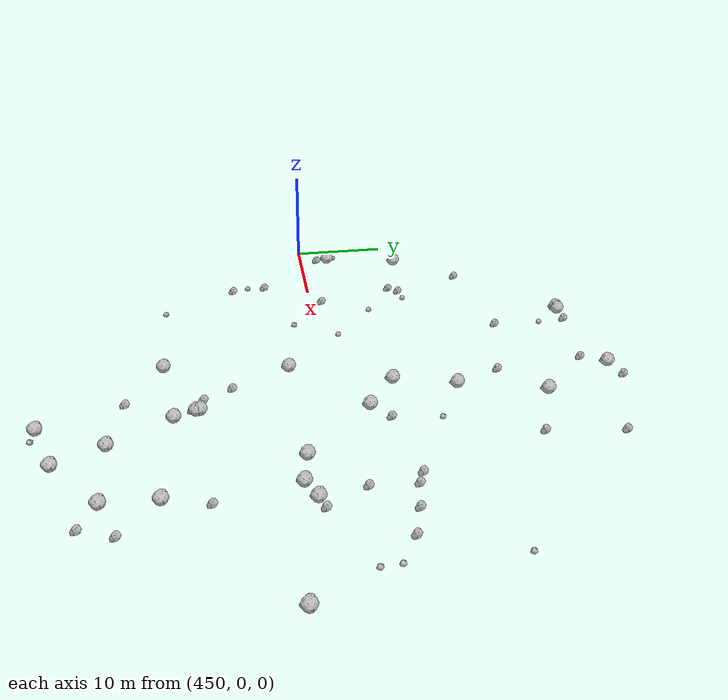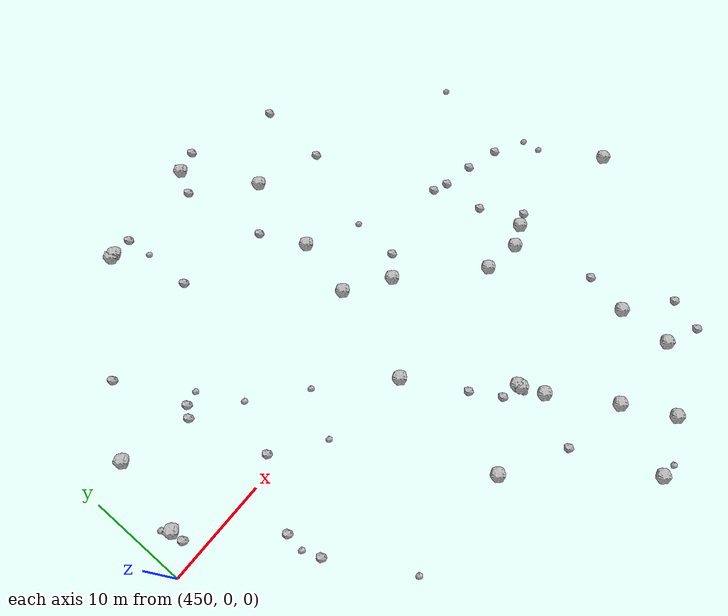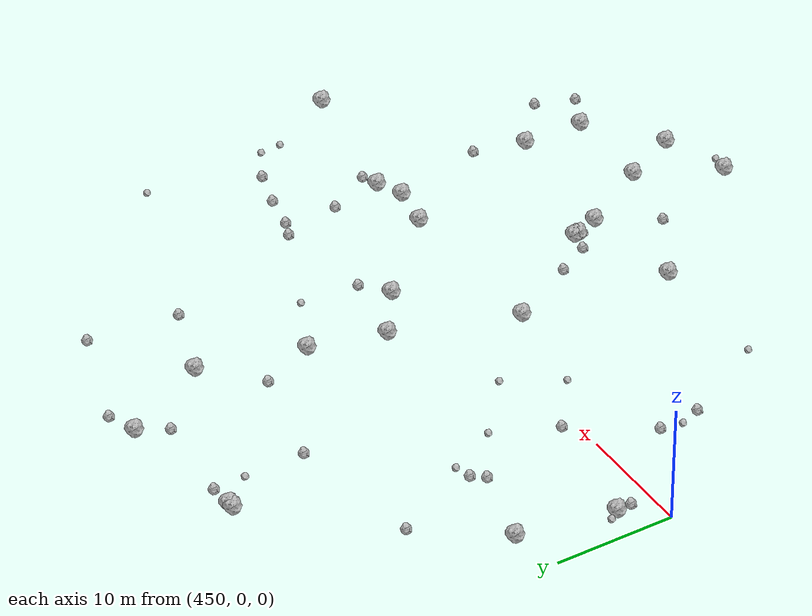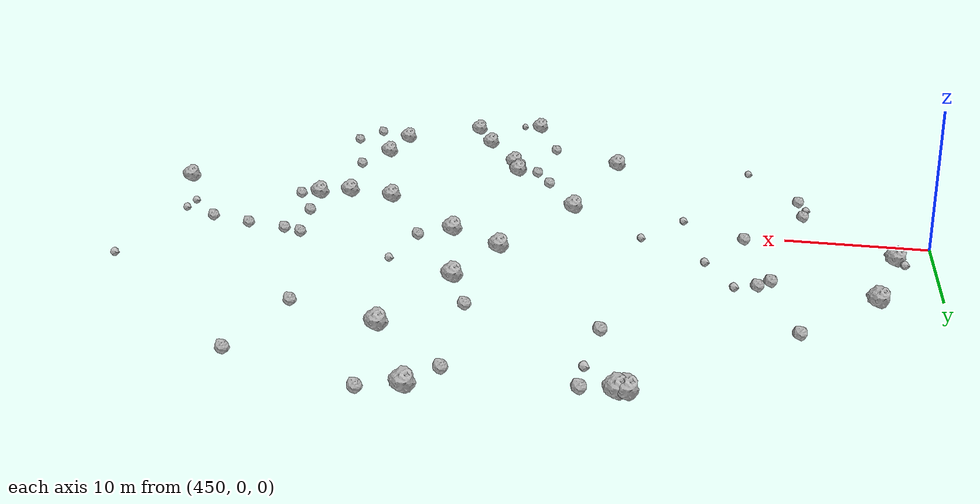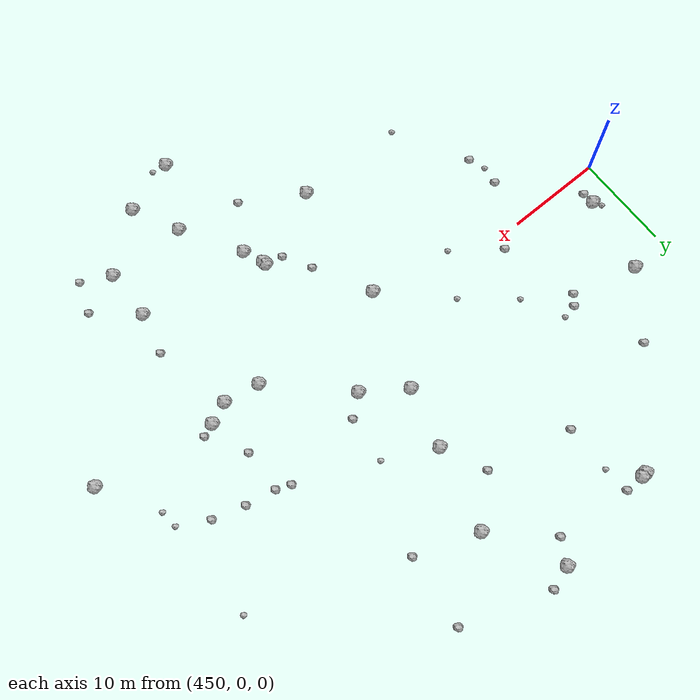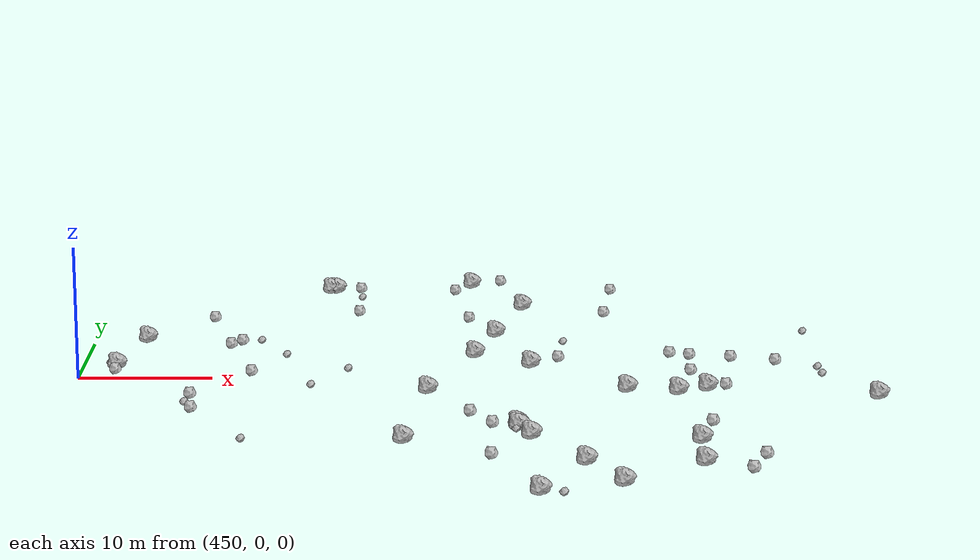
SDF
<sdf version="1.6">
 <world name="default">
  <include><uri>model://sun</uri></include>
  <model name="rock1_12_4">
   <include><uri>model://rock1</uri><pose>483.5782796406033 21.366067528152783 0.5 0 0 0</pose></include>
  </model>
  <model name="rock1_12_5">
   <include><uri>model://rock1</uri><pose>479.69982612626194 6.435489945739214 0.5 0 0 0</pose></include>
  </model>
  <model name="rock1_12_6">
   <include><uri>model://rock1</uri><pose>483.9185802113394 3.4927398683688295 0.5 0 0 0</pose></include>
  </model>
  <model name="rock1_12_7">
   <include><uri>model://rock1</uri><pose>452.5855299212303 3.159435430323498 0.5 0 0 0</pose></include>
  </model>
  <model name="rock1_12_8">
   <include><uri>model://rock1</uri><pose>483.9401700009514 -28.0813151743721 0.5 0 0 0</pose></include>
  </model>
  <model name="rock1_12_9">
   <include><uri>model://rock1</uri><pose>495.3108312832591 -21.607697987136646 0.5 0 0 0</pose></include>
  </model>
  <model name="rock1_12_10">
   <include><uri>model://rock1</uri><pose>483.59612140396854 -15.293827737450217 0.5 0 0 0</pose></include>
  </model>
  <model name="rock1_12_11">
   <include><uri>model://rock1</uri><pose>487.215991025601 -21.405620721014415 0.5 0 0 0</pose></include>
  </model>
  <model name="rock1_12_12">
   <include><uri>model://rock1</uri><pose>496.85446443038217 -3.0376278234823815 0.5 0 0 0</pose></include>
  </model>
  <model name="rock1_12_13">
   <include><uri>model://rock1</uri><pose>479.4735375755316 28.895677688172505 0.5 0 0 0</pose></include>
  </model>
  <model name="rock1_12_14">
   <include><uri>model://rock1</uri><pose>509.2187875896622 -5.208309437922416 0.5 0 0 0</pose></include>
  </model>
  <model name="rock1_12_15">
   <include><uri>model://rock1</uri><pose>481.3335341576312 12.689656752981762 0.5 0 0 0</pose></include>
  </model>
  <model name="rock1_12_16">
   <include><uri>model://rock1</uri><pose>474.6447566660453 -16.344350473787365 0.5 0 0 0</pose></include>
  </model>
  <model name="rock1_12_17">
   <include><uri>model://rock1</uri><pose>467.74785947338705 27.117558797139857 0.5 0 0 0</pose></include>
  </model>
  <model name="rock1_12_18">
   <include><uri>model://rock1</uri><pose>489.56515062739976 -26.18229414721529 0.5 0 0 0</pose></include>
  </model>
  <model name="rock1_12_19">
   <include><uri>model://rock1</uri><pose>468.2430165868843 27.164277172789212 0.5 0 0 0</pose></include>
  </model>
  <model name="rock1_12_20">
   <include><uri>model://rock1</uri><pose>482.74256113502213 -13.17479232104921 0.5 0 0 0</pose></include>
  </model>
  <model name="rock1_12_21">
   <include><uri>model://rock1</uri><pose>495.4385307298618 -16.350702620273196 0.5 0 0 0</pose></include>
  </model>
  <model name="rock1_12_22">
   <include><uri>model://rock1</uri><pose>454.10522491771445 11.096737669807673 0.5 0 0 0</pose></include>
  </model>
  <model name="rock1_12_23">
   <include><uri>model://rock1</uri><pose>482.6965796595375 -12.80610279367783 0.5 0 0 0</pose></include>
  </model>
  <model name="rock1_12_24">
   <include><uri>model://rock1</uri><pose>494.6303376670713 -4.0107123452938644 0.5 0 0 0</pose></include>
  </model>
  <model name="rock1_12_25">
   <include><uri>model://rock1</uri><pose>490.9049657282663 -3.3490939406710254 0.5 0 0 0</pose></include>
  </model>
  <model name="rock1_12_26">
   <include><uri>model://rock1</uri><pose>476.2013406216515 -3.6735311657306617 0.5 0 0 0</pose></include>
  </model>
  <model name="rock2_12_0">
   <include><uri>model://rock2</uri><pose>459.1661385440694 -8.552711648716013 0.3 0 0 0</pose></include>
  </model>
  <model name="rock2_12_1">
   <include><uri>model://rock2</uri><pose>462.87315826919456 1.2688007591159085 0.3 0 0 0</pose></include>
  </model>
  <model name="rock2_12_2">
   <include><uri>model://rock2</uri><pose>495.86283102478313 1.4440700906443418 0.3 0 0 0</pose></include>
  </model>
  <model name="rock2_12_3">
   <include><uri>model://rock2</uri><pose>479.20553520806715 17.35372190911056 0.3 0 0 0</pose></include>
  </model>
  <model name="rock2_12_4">
   <include><uri>model://rock2</uri><pose>470.2090839285354 27.26117863110135 0.3 0 0 0</pose></include>
  </model>
  <model name="rock2_12_5">
   <include><uri>model://rock2</uri><pose>490.07344202191405 19.062507470439947 0.3 0 0 0</pose></include>
  </model>
  <model name="rock2_12_6">
   <include><uri>model://rock2</uri><pose>460.75489260927355 9.27436744281119 0.3 0 0 0</pose></include>
  </model>
  <model name="rock2_12_7">
   <include><uri>model://rock2</uri><pose>458.7988774676396 -4.931937529458082 0.3 0 0 0</pose></include>
  </model>
  <model name="rock2_12_8">
   <include><uri>model://rock2</uri><pose>490.9417865949006 26.6811483097909 0.3 0 0 0</pose></include>
  </model>
  <model name="rock2_12_9">
   <include><uri>model://rock2</uri><pose>498.2012755165196 -2.533656387633979 0.3 0 0 0</pose></include>
  </model>
  <model name="rock2_12_10">
   <include><uri>model://rock2</uri><pose>498.36774865688574 -23.174626137531817 0.3 0 0 0</pose></include>
  </model>
  <model name="rock2_12_11">
   <include><uri>model://rock2</uri><pose>452.57759452639345 1.8745154207722763 0.3 0 0 0</pose></include>
  </model>
  <model name="rock2_12_12">
   <include><uri>model://rock2</uri><pose>496.4855132096304 -12.025271947204278 0.3 0 0 0</pose></include>
  </model>
  <model name="rock2_12_13">
   <include><uri>model://rock2</uri><pose>494.5893888125059 6.504206750293285 0.3 0 0 0</pose></include>
  </model>
  <model name="rock2_12_14">
   <include><uri>model://rock2</uri><pose>470.34235561508126 19.438631830602084 0.3 0 0 0</pose></include>
  </model>
  <model name="rock2_12_15">
   <include><uri>model://rock2</uri><pose>458.827622260674 17.52513076876643 0.3 0 0 0</pose></include>
  </model>
  <model name="rock2_12_16">
   <include><uri>model://rock2</uri><pose>479.2746140210543 -9.562371511420412 0.3 0 0 0</pose></include>
  </model>
  <model name="rock2_12_17">
   <include><uri>model://rock2</uri><pose>480.7244613156488 -19.983912594043986 0.3 0 0 0</pose></include>
  </model>
  <model name="rock2_12_18">
   <include><uri>model://rock2</uri><pose>480.8676577719435 -12.426586042889113 0.3 0 0 0</pose></include>
  </model>
  <model name="rock2_12_19">
   <include><uri>model://rock2</uri><pose>481.84726176300825 29.739518912631056 0.3 0 0 0</pose></include>
  </model>
  <model name="rock2_12_20">
   <include><uri>model://rock2</uri><pose>502.5076705354677 4.336511902292713 0.3 0 0 0</pose></include>
  </model>
  <model name="rock2_12_21">
   <include><uri>model://rock2</uri><pose>486.00766002775214 5.227094526707532 0.3 0 0 0</pose></include>
  </model>
  <model name="rock2_12_22">
   <include><uri>model://rock2</uri><pose>499.5509871989804 -19.93021661417115 0.3 0 0 0</pose></include>
  </model>
  <model name="rock2_12_23">
   <include><uri>model://rock2</uri><pose>499.1825931088826 5.310588862626403 0.3 0 0 0</pose></include>
  </model>
  <model name="rock2_12_24">
   <include><uri>model://rock2</uri><pose>478.0662468955662 26.48825006112795 0.3 0 0 0</pose></include>
  </model>
  <model name="rock2_12_25">
   <include><uri>model://rock2</uri><pose>461.5668548434236 10.284304701223682 0.3 0 0 0</pose></include>
  </model>
  <model name="rock2_12_26">
   <include><uri>model://rock2</uri><pose>496.07396582465196 5.909628930398306 0.3 0 0 0</pose></include>
  </model>
  <model name="rock3_12_0">
   <include><uri>model://rock3</uri><pose>486.51050384646487 10.090438036935659 0.2 0 0 0</pose></include>
  </model>
  <model name="rock3_12_1">
   <include><uri>model://rock3</uri><pose>470.087350247572 2.225828050777899 0.2 0 0 0</pose></include>
  </model>
  <model name="rock3_12_2">
   <include><uri>model://rock3</uri><pose>470.3819861301402 24.44460396417051 0.2 0 0 0</pose></include>
  </model>
  <model name="rock3_12_3">
   <include><uri>model://rock3</uri><pose>465.21552464915374 6.300188240809106 0.2 0 0 0</pose></include>
  </model>
  <model name="rock3_12_4">
   <include><uri>model://rock3</uri><pose>467.48095097172865 -2.2888397186259617 0.2 0 0 0</pose></include>
  </model>
  <model name="rock3_12_5">
   <include><uri>model://rock3</uri><pose>505.54401719084876 13.231276593227946 0.2 0 0 0</pose></include>
  </model>
  <model name="rock3_12_6">
   <include><uri>model://rock3</uri><pose>463.006260536293 10.558264409001268 0.2 0 0 0</pose></include>
  </model>
  <model name="rock3_12_7">
   <include><uri>model://rock3</uri><pose>463.32054817218454 -16.189261431438744 0.2 0 0 0</pose></include>
  </model>
  <model name="rock3_12_8">
   <include><uri>model://rock3</uri><pose>505.68727448321476 0.7700591014792799 0.2 0 0 0</pose></include>
  </model>
  <model name="rock3_12_9">
   <include><uri>model://rock3</uri><pose>451.9595052940737 3.9533038560136404 0.2 0 0 0</pose></include>
  </model>
  <model name="rock3_12_10">
   <include><uri>model://rock3</uri><pose>458.52306204932063 -6.85487133449849 0.2 0 0 0</pose></include>
  </model>
  <model name="rock3_12_11">
   <include><uri>model://rock3</uri><pose>482.52128722388585 -13.753070306426292 0.2 0 0 0</pose></include>
  </model>
  <model name="rock3_12_12">
   <include><uri>model://rock3</uri><pose>505.53952847948375 2.6171157262177616 0.2 0 0 0</pose></include>
  </model>
  <model name="rock3_12_13">
   <include><uri>model://rock3</uri><pose>485.4412299830628 -28.40142219245687 0.2 0 0 0</pose></include>
  </model>
 </world>
</sdf>
